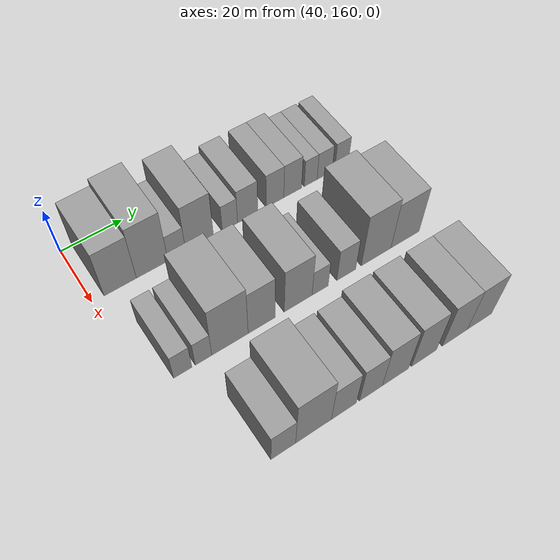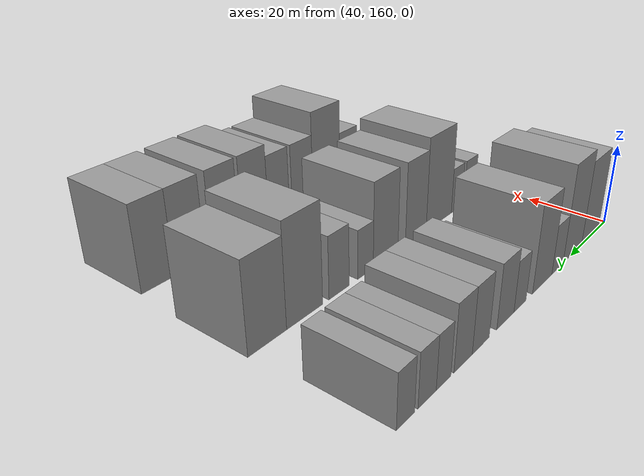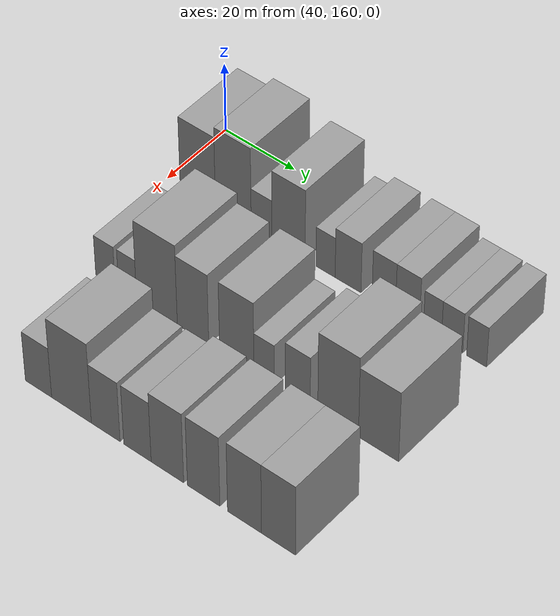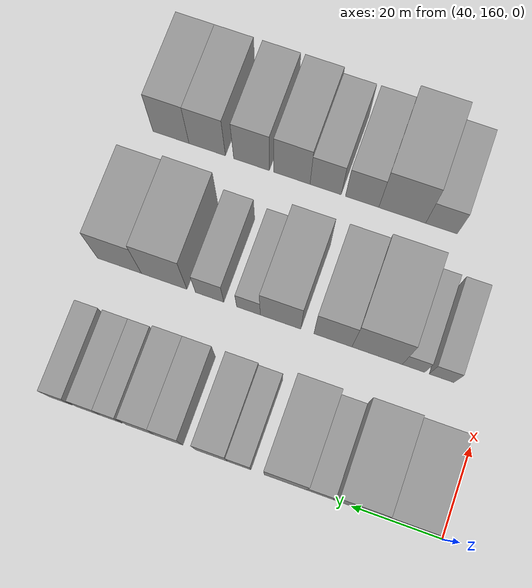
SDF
<sdf version="1.6">
 <world name="default">
  <model name="building_59">
   <static>1</static>
   <pose>50.0000 168.8208 0 0.000000 0.000000 0.000000</pose>
   <link name="link">
    <pose>0 0 10.50 0 0 0</pose>
    <collision name="collision"><geometry><box><size>20.0000 10.2211 21.0000</size></box></geometry></collision>
    <visual name="visual">
     <cast_shadows>0</cast_shadows>
     <geometry><box><size>20.0000 10.2211 21.0000</size></box></geometry>
     <material>
      <script>
       <uri>model://grey_wall/materials/scripts</uri>
       <uri>model://grey_wall/materials/textures</uri>
       <name>vrc/grey_wall</name>
      </script>
     </material>
    </visual>
   </link>
  </model>
  <model name="building_60">
   <static>1</static>
   <pose>50.0000 179.0510 0 0.000000 0.000000 0.000000</pose>
   <link name="link">
    <pose>0 0 12.00 0 0 0</pose>
    <collision name="collision"><geometry><box><size>20.0000 10.2393 24.0000</size></box></geometry></collision>
    <visual name="visual">
     <cast_shadows>0</cast_shadows>
     <geometry><box><size>20.0000 10.2393 24.0000</size></box></geometry>
     <material>
      <script>
       <uri>model://grey_wall/materials/scripts</uri>
       <uri>model://grey_wall/materials/textures</uri>
       <name>vrc/grey_wall</name>
      </script>
     </material>
    </visual>
   </link>
  </model>
  <model name="building_61">
   <static>1</static>
   <pose>50.0000 187.0893 0 0.000000 0.000000 0.000000</pose>
   <link name="link">
    <pose>0 0 6.00 0 0 0</pose>
    <collision name="collision"><geometry><box><size>20.0000 5.8373 12.0000</size></box></geometry></collision>
    <visual name="visual">
     <cast_shadows>0</cast_shadows>
     <geometry><box><size>20.0000 5.8373 12.0000</size></box></geometry>
     <material>
      <script>
       <uri>model://grey_wall/materials/scripts</uri>
       <uri>model://grey_wall/materials/textures</uri>
       <name>vrc/grey_wall</name>
      </script>
     </material>
    </visual>
   </link>
  </model>
  <model name="building_62">
   <static>1</static>
   <pose>50.0000 194.6850 0 0.000000 0.000000 0.000000</pose>
   <link name="link">
    <pose>0 0 10.50 0 0 0</pose>
    <collision name="collision"><geometry><box><size>20.0000 9.3541 21.0000</size></box></geometry></collision>
    <visual name="visual">
     <cast_shadows>0</cast_shadows>
     <geometry><box><size>20.0000 9.3541 21.0000</size></box></geometry>
     <material>
      <script>
       <uri>model://grey_wall/materials/scripts</uri>
       <uri>model://grey_wall/materials/textures</uri>
       <name>vrc/grey_wall</name>
      </script>
     </material>
    </visual>
   </link>
  </model>
  <model name="building_63">
   <static>1</static>
   <pose>50.0000 205.0098 0 0.000000 0.000000 0.000000</pose>
   <link name="link">
    <pose>0 0 6.00 0 0 0</pose>
    <collision name="collision"><geometry><box><size>20.0000 5.2954 12.0000</size></box></geometry></collision>
    <visual name="visual">
     <cast_shadows>0</cast_shadows>
     <geometry><box><size>20.0000 5.2954 12.0000</size></box></geometry>
     <material>
      <script>
       <uri>model://grey_wall/materials/scripts</uri>
       <uri>model://grey_wall/materials/textures</uri>
       <name>vrc/grey_wall</name>
      </script>
     </material>
    </visual>
   </link>
  </model>
  <model name="building_64">
   <static>1</static>
   <pose>50.0000 211.2053 0 0.000000 0.000000 0.000000</pose>
   <link name="link">
    <pose>0 0 7.50 0 0 0</pose>
    <collision name="collision"><geometry><box><size>20.0000 7.0957 15.0000</size></box></geometry></collision>
    <visual name="visual">
     <cast_shadows>0</cast_shadows>
     <geometry><box><size>20.0000 7.0957 15.0000</size></box></geometry>
     <material>
      <script>
       <uri>model://grey_wall/materials/scripts</uri>
       <uri>model://grey_wall/materials/textures</uri>
       <name>vrc/grey_wall</name>
      </script>
     </material>
    </visual>
   </link>
  </model>
  <model name="building_65">
   <static>1</static>
   <pose>50.0000 220.9267 0 0.000000 0.000000 0.000000</pose>
   <link name="link">
    <pose>0 0 7.50 0 0 0</pose>
    <collision name="collision"><geometry><box><size>20.0000 6.3471 15.0000</size></box></geometry></collision>
    <visual name="visual">
     <cast_shadows>0</cast_shadows>
     <geometry><box><size>20.0000 6.3471 15.0000</size></box></geometry>
     <material>
      <script>
       <uri>model://grey_wall/materials/scripts</uri>
       <uri>model://grey_wall/materials/textures</uri>
       <name>vrc/grey_wall</name>
      </script>
     </material>
    </visual>
   </link>
  </model>
  <model name="building_66">
   <static>1</static>
   <pose>50.0000 227.3407 0 0.000000 0.000000 0.000000</pose>
   <link name="link">
    <pose>0 0 7.50 0 0 0</pose>
    <collision name="collision"><geometry><box><size>20.0000 6.4809 15.0000</size></box></geometry></collision>
    <visual name="visual">
     <cast_shadows>0</cast_shadows>
     <geometry><box><size>20.0000 6.4809 15.0000</size></box></geometry>
     <material>
      <script>
       <uri>model://grey_wall/materials/scripts</uri>
       <uri>model://grey_wall/materials/textures</uri>
       <name>vrc/grey_wall</name>
      </script>
     </material>
    </visual>
   </link>
  </model>
  <model name="building_67">
   <static>1</static>
   <pose>50.0000 233.9903 0 0.000000 0.000000 0.000000</pose>
   <link name="link">
    <pose>0 0 6.00 0 0 0</pose>
    <collision name="collision"><geometry><box><size>20.0000 4.8182 12.0000</size></box></geometry></collision>
    <visual name="visual">
     <cast_shadows>0</cast_shadows>
     <geometry><box><size>20.0000 4.8182 12.0000</size></box></geometry>
     <material>
      <script>
       <uri>model://grey_wall/materials/scripts</uri>
       <uri>model://grey_wall/materials/textures</uri>
       <name>vrc/grey_wall</name>
      </script>
     </material>
    </visual>
   </link>
  </model>
  <model name="building_68">
   <static>1</static>
   <pose>50.0000 239.2247 0 0.000000 0.000000 0.000000</pose>
   <link name="link">
    <pose>0 0 6.00 0 0 0</pose>
    <collision name="collision"><geometry><box><size>20.0000 5.6506 12.0000</size></box></geometry></collision>
    <visual name="visual">
     <cast_shadows>0</cast_shadows>
     <geometry><box><size>20.0000 5.6506 12.0000</size></box></geometry>
     <material>
      <script>
       <uri>model://grey_wall/materials/scripts</uri>
       <uri>model://grey_wall/materials/textures</uri>
       <name>vrc/grey_wall</name>
      </script>
     </material>
    </visual>
   </link>
  </model>
  <model name="building_69">
   <static>1</static>
   <pose>50.0000 245.6717 0 0.000000 0.000000 0.000000</pose>
   <link name="link">
    <pose>0 0 6.00 0 0 0</pose>
    <collision name="collision"><geometry><box><size>20.0000 5.2436 12.0000</size></box></geometry></collision>
    <visual name="visual">
     <cast_shadows>0</cast_shadows>
     <geometry><box><size>20.0000 5.2436 12.0000</size></box></geometry>
     <material>
      <script>
       <uri>model://grey_wall/materials/scripts</uri>
       <uri>model://grey_wall/materials/textures</uri>
       <name>vrc/grey_wall</name>
      </script>
     </material>
    </visual>
   </link>
  </model>
  <model name="building_139">
   <static>1</static>
   <pose>82.0000 170.2102 0 0.000000 0.000000 0.000000</pose>
   <link name="link">
    <pose>0 0 6.00 0 0 0</pose>
    <collision name="collision"><geometry><box><size>20.0000 5.5726 12.0000</size></box></geometry></collision>
    <visual name="visual">
     <cast_shadows>0</cast_shadows>
     <geometry><box><size>20.0000 5.5726 12.0000</size></box></geometry>
     <material>
      <script>
       <uri>model://grey_wall/materials/scripts</uri>
       <uri>model://grey_wall/materials/textures</uri>
       <name>vrc/grey_wall</name>
      </script>
     </material>
    </visual>
   </link>
  </model>
  <model name="building_140">
   <static>1</static>
   <pose>82.0000 176.5532 0 0.000000 0.000000 0.000000</pose>
   <link name="link">
    <pose>0 0 6.00 0 0 0</pose>
    <collision name="collision"><geometry><box><size>20.0000 5.1133 12.0000</size></box></geometry></collision>
    <visual name="visual">
     <cast_shadows>0</cast_shadows>
     <geometry><box><size>20.0000 5.1133 12.0000</size></box></geometry>
     <material>
      <script>
       <uri>model://grey_wall/materials/scripts</uri>
       <uri>model://grey_wall/materials/textures</uri>
       <name>vrc/grey_wall</name>
      </script>
     </material>
    </visual>
   </link>
  </model>
  <model name="building_141">
   <static>1</static>
   <pose>82.0000 184.8595 0 0.000000 0.000000 0.000000</pose>
   <link name="link">
    <pose>0 0 12.00 0 0 0</pose>
    <collision name="collision"><geometry><box><size>20.0000 11.4994 24.0000</size></box></geometry></collision>
    <visual name="visual">
     <cast_shadows>0</cast_shadows>
     <geometry><box><size>20.0000 11.4994 24.0000</size></box></geometry>
     <material>
      <script>
       <uri>model://grey_wall/materials/scripts</uri>
       <uri>model://grey_wall/materials/textures</uri>
       <name>vrc/grey_wall</name>
      </script>
     </material>
    </visual>
   </link>
  </model>
  <model name="building_142">
   <static>1</static>
   <pose>82.0000 194.9792 0 0.000000 0.000000 0.000000</pose>
   <link name="link">
    <pose>0 0 10.50 0 0 0</pose>
    <collision name="collision"><geometry><box><size>20.0000 8.7399 21.0000</size></box></geometry></collision>
    <visual name="visual">
     <cast_shadows>0</cast_shadows>
     <geometry><box><size>20.0000 8.7399 21.0000</size></box></geometry>
     <material>
      <script>
       <uri>model://grey_wall/materials/scripts</uri>
       <uri>model://grey_wall/materials/textures</uri>
       <name>vrc/grey_wall</name>
      </script>
     </material>
    </visual>
   </link>
  </model>
  <model name="building_143">
   <static>1</static>
   <pose>82.0000 207.0401 0 0.000000 0.000000 0.000000</pose>
   <link name="link">
    <pose>0 0 10.50 0 0 0</pose>
    <collision name="collision"><geometry><box><size>20.0000 9.3818 21.0000</size></box></geometry></collision>
    <visual name="visual">
     <cast_shadows>0</cast_shadows>
     <geometry><box><size>20.0000 9.3818 21.0000</size></box></geometry>
     <material>
      <script>
       <uri>model://grey_wall/materials/scripts</uri>
       <uri>model://grey_wall/materials/textures</uri>
       <name>vrc/grey_wall</name>
      </script>
     </material>
    </visual>
   </link>
  </model>
  <model name="building_144">
   <static>1</static>
   <pose>82.0000 214.4838 0 0.000000 0.000000 0.000000</pose>
   <link name="link">
    <pose>0 0 6.00 0 0 0</pose>
    <collision name="collision"><geometry><box><size>20.0000 5.5058 12.0000</size></box></geometry></collision>
    <visual name="visual">
     <cast_shadows>0</cast_shadows>
     <geometry><box><size>20.0000 5.5058 12.0000</size></box></geometry>
     <material>
      <script>
       <uri>model://grey_wall/materials/scripts</uri>
       <uri>model://grey_wall/materials/textures</uri>
       <name>vrc/grey_wall</name>
      </script>
     </material>
    </visual>
   </link>
  </model>
  <model name="building_145">
   <static>1</static>
   <pose>82.0000 223.5558 0 0.000000 0.000000 0.000000</pose>
   <link name="link">
    <pose>0 0 7.50 0 0 0</pose>
    <collision name="collision"><geometry><box><size>20.0000 6.6380 15.0000</size></box></geometry></collision>
    <visual name="visual">
     <cast_shadows>0</cast_shadows>
     <geometry><box><size>20.0000 6.6380 15.0000</size></box></geometry>
     <material>
      <script>
       <uri>model://grey_wall/materials/scripts</uri>
       <uri>model://grey_wall/materials/textures</uri>
       <name>vrc/grey_wall</name>
      </script>
     </material>
    </visual>
   </link>
  </model>
  <model name="building_146">
   <static>1</static>
   <pose>82.0000 234.2435 0 0.000000 0.000000 0.000000</pose>
   <link name="link">
    <pose>0 0 12.00 0 0 0</pose>
    <collision name="collision"><geometry><box><size>20.0000 10.7374 24.0000</size></box></geometry></collision>
    <visual name="visual">
     <cast_shadows>0</cast_shadows>
     <geometry><box><size>20.0000 10.7374 24.0000</size></box></geometry>
     <material>
      <script>
       <uri>model://grey_wall/materials/scripts</uri>
       <uri>model://grey_wall/materials/textures</uri>
       <name>vrc/grey_wall</name>
      </script>
     </material>
    </visual>
   </link>
  </model>
  <model name="building_147">
   <static>1</static>
   <pose>82.0000 244.8374 0 0.000000 0.000000 0.000000</pose>
   <link name="link">
    <pose>0 0 10.50 0 0 0</pose>
    <collision name="collision"><geometry><box><size>20.0000 10.4504 21.0000</size></box></geometry></collision>
    <visual name="visual">
     <cast_shadows>0</cast_shadows>
     <geometry><box><size>20.0000 10.4504 21.0000</size></box></geometry>
     <material>
      <script>
       <uri>model://grey_wall/materials/scripts</uri>
       <uri>model://grey_wall/materials/textures</uri>
       <name>vrc/grey_wall</name>
      </script>
     </material>
    </visual>
   </link>
  </model>
  <model name="building_214">
   <static>1</static>
   <pose>114.0000 180.2237 0 0.000000 0.000000 0.000000</pose>
   <link name="link">
    <pose>0 0 7.50 0 0 0</pose>
    <collision name="collision"><geometry><box><size>20.0000 7.3857 15.0000</size></box></geometry></collision>
    <visual name="visual">
     <cast_shadows>0</cast_shadows>
     <geometry><box><size>20.0000 7.3857 15.0000</size></box></geometry>
     <material>
      <script>
       <uri>model://grey_wall/materials/scripts</uri>
       <uri>model://grey_wall/materials/textures</uri>
       <name>vrc/grey_wall</name>
      </script>
     </material>
    </visual>
   </link>
  </model>
  <model name="building_215">
   <static>1</static>
   <pose>114.0000 189.4387 0 0.000000 0.000000 0.000000</pose>
   <link name="link">
    <pose>0 0 12.00 0 0 0</pose>
    <collision name="collision"><geometry><box><size>20.0000 11.0443 24.0000</size></box></geometry></collision>
    <visual name="visual">
     <cast_shadows>0</cast_shadows>
     <geometry><box><size>20.0000 11.0443 24.0000</size></box></geometry>
     <material>
      <script>
       <uri>model://grey_wall/materials/scripts</uri>
       <uri>model://grey_wall/materials/textures</uri>
       <name>vrc/grey_wall</name>
      </script>
     </material>
    </visual>
   </link>
  </model>
  <model name="building_216">
   <static>1</static>
   <pose>114.0000 198.9049 0 0.000000 0.000000 0.000000</pose>
   <link name="link">
    <pose>0 0 9.00 0 0 0</pose>
    <collision name="collision"><geometry><box><size>20.0000 7.8880 18.0000</size></box></geometry></collision>
    <visual name="visual">
     <cast_shadows>0</cast_shadows>
     <geometry><box><size>20.0000 7.8880 18.0000</size></box></geometry>
     <material>
      <script>
       <uri>model://grey_wall/materials/scripts</uri>
       <uri>model://grey_wall/materials/textures</uri>
       <name>vrc/grey_wall</name>
      </script>
     </material>
    </visual>
   </link>
  </model>
  <model name="building_217">
   <static>1</static>
   <pose>114.0000 207.5673 0 0.000000 0.000000 0.000000</pose>
   <link name="link">
    <pose>0 0 9.00 0 0 0</pose>
    <collision name="collision"><geometry><box><size>20.0000 7.4368 18.0000</size></box></geometry></collision>
    <visual name="visual">
     <cast_shadows>0</cast_shadows>
     <geometry><box><size>20.0000 7.4368 18.0000</size></box></geometry>
     <material>
      <script>
       <uri>model://grey_wall/materials/scripts</uri>
       <uri>model://grey_wall/materials/textures</uri>
       <name>vrc/grey_wall</name>
      </script>
     </material>
    </visual>
   </link>
  </model>
  <model name="building_218">
   <static>1</static>
   <pose>114.0000 215.6517 0 0.000000 0.000000 0.000000</pose>
   <link name="link">
    <pose>0 0 10.50 0 0 0</pose>
    <collision name="collision"><geometry><box><size>20.0000 8.7320 21.0000</size></box></geometry></collision>
    <visual name="visual">
     <cast_shadows>0</cast_shadows>
     <geometry><box><size>20.0000 8.7320 21.0000</size></box></geometry>
     <material>
      <script>
       <uri>model://grey_wall/materials/scripts</uri>
       <uri>model://grey_wall/materials/textures</uri>
       <name>vrc/grey_wall</name>
      </script>
     </material>
    </visual>
   </link>
  </model>
  <model name="building_219">
   <static>1</static>
   <pose>114.0000 225.3145 0 0.000000 0.000000 0.000000</pose>
   <link name="link">
    <pose>0 0 10.50 0 0 0</pose>
    <collision name="collision"><geometry><box><size>20.0000 8.5937 21.0000</size></box></geometry></collision>
    <visual name="visual">
     <cast_shadows>0</cast_shadows>
     <geometry><box><size>20.0000 8.5937 21.0000</size></box></geometry>
     <material>
      <script>
       <uri>model://grey_wall/materials/scripts</uri>
       <uri>model://grey_wall/materials/textures</uri>
       <name>vrc/grey_wall</name>
      </script>
     </material>
    </visual>
   </link>
  </model>
  <model name="building_220">
   <static>1</static>
   <pose>114.0000 236.0336 0 0.000000 0.000000 0.000000</pose>
   <link name="link">
    <pose>0 0 10.50 0 0 0</pose>
    <collision name="collision"><geometry><box><size>20.0000 8.8445 21.0000</size></box></geometry></collision>
    <visual name="visual">
     <cast_shadows>0</cast_shadows>
     <geometry><box><size>20.0000 8.8445 21.0000</size></box></geometry>
     <material>
      <script>
       <uri>model://grey_wall/materials/scripts</uri>
       <uri>model://grey_wall/materials/textures</uri>
       <name>vrc/grey_wall</name>
      </script>
     </material>
    </visual>
   </link>
  </model>
  <model name="building_221">
   <static>1</static>
   <pose>114.0000 244.8488 0 0.000000 0.000000 0.000000</pose>
   <link name="link">
    <pose>0 0 10.50 0 0 0</pose>
    <collision name="collision"><geometry><box><size>20.0000 8.7859 21.0000</size></box></geometry></collision>
    <visual name="visual">
     <cast_shadows>0</cast_shadows>
     <geometry><box><size>20.0000 8.7859 21.0000</size></box></geometry>
     <material>
      <script>
       <uri>model://grey_wall/materials/scripts</uri>
       <uri>model://grey_wall/materials/textures</uri>
       <name>vrc/grey_wall</name>
      </script>
     </material>
    </visual>
   </link>
  </model>
 </world>
</sdf>
